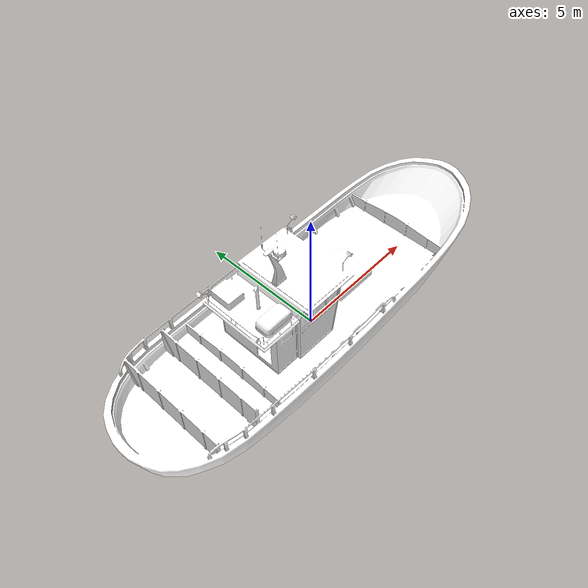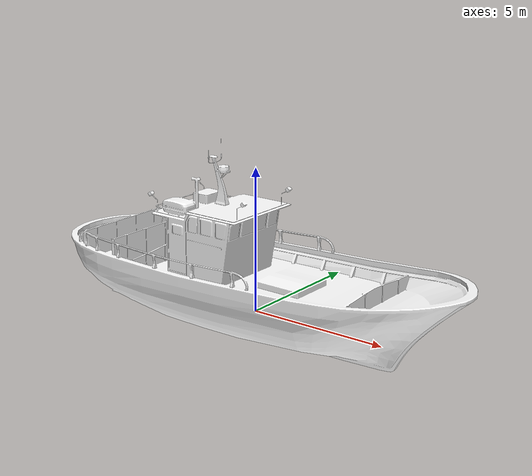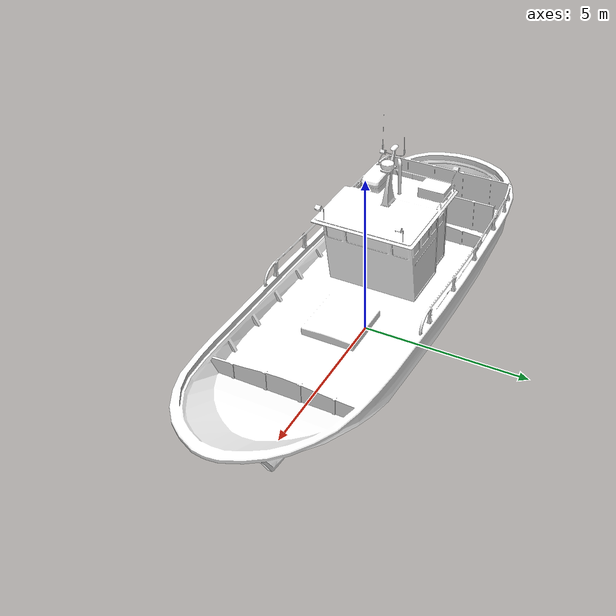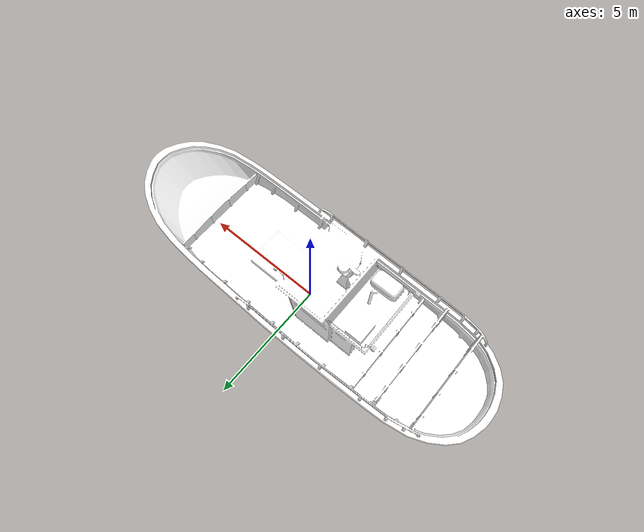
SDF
<?xml version='1.0' ?>
<sdf version="1.6">
  <model name="vessel_f">
    <static>false</static>
    <link name="link">
      <enable_wind>true</enable_wind>
      <inertial>
        <mass>1500.0</mass>
        <inertia>
          <ixx>3625</ixx>
          <ixy>0.0</ixy>
          <ixz>0.0</ixz>
          <iyy>25000</iyy>
          <iyz>0.0</iyz>
          <izz>27625</izz>
        </inertia>
      </inertial>
      <visual name="visual">
        <pose>0 0 0 1.5708 0 1.5708</pose>
        <geometry>
          <mesh>
            <uri>meshes/Boat06.dae</uri>
          </mesh>
        </geometry>
        <material>
          <diffuse>1.0 1.0 1.0</diffuse>
          <specular>1.0 1.0 1.0</specular>
          <pbr>
            <metal>
              <albedo_map>materials/textures/Boat06_Albedo.jpg</albedo_map>
              <normal_map>materials/textures/Boat06_Normal.jpg</normal_map>
              <roughness_map>materials/textures/Boat06_Roughness.jpg</roughness_map>
              <metalness_map>materials/textures/Boat06_Metalness.png</metalness_map>
            </metal>
          </pbr>
        </material>
      </visual>
      <collision name="collision">
        <pose>0 0 0 1.5708 0 1.5708</pose>
        <geometry>
          <mesh>
            <uri>meshes/Boat06.dae</uri>
          </mesh>
        </geometry>
      </collision>
    </link>
  </model>
</sdf>
